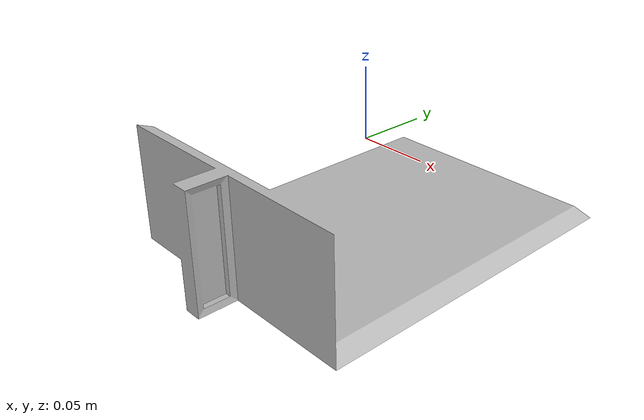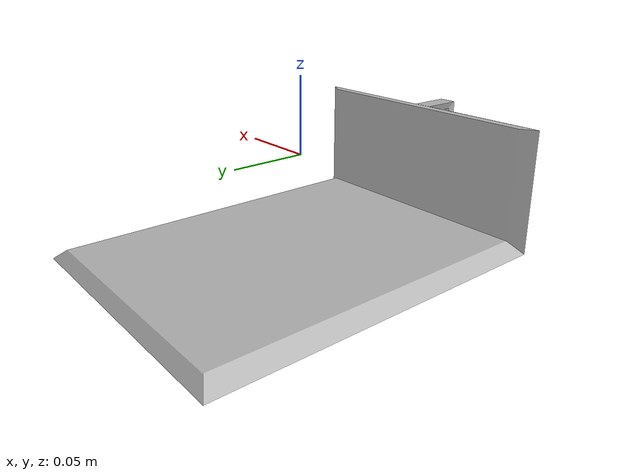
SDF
<?xml version="1.0"?>
<sdf version="1.5">
  <model name="bin">
    <link name="link">
      <inertial>
        <pose>0 0 0.06 0 0 0</pose>
        <mass>0.01037500</mass>
        <inertia>
          <ixx>0.00055575</ixx>
          <ixy>0</ixy>
          <ixz>0</ixz>
          <iyy>0.00055575</iyy>
          <iyz>0</iyz>
          <izz>0.0001755</izz>
        </inertia>
      </inertial>
      <collision name="collision">
        <pose>0.003937 0.0047244 -0.18 0 0 0</pose>
        <geometry>
          <mesh>
            <uri>model://bin_model/meshes/binwowall.dae</uri>
          </mesh>
        </geometry>
        <surface>
          <friction>
            <ode>
              <mu>0.01</mu>
              <mu2>0.01</mu2>
            </ode>
          </friction>
        </surface>
      </collision>
      <visual name="visual">
        <pose>0.003937 0.0047244 -0.18 0 0 0</pose>
        <geometry>
          <mesh>
            <uri>model://bin_model/meshes/binwowall.dae</uri>
          </mesh>
        </geometry>
      </visual>
    </link>
  </model>
</sdf>
